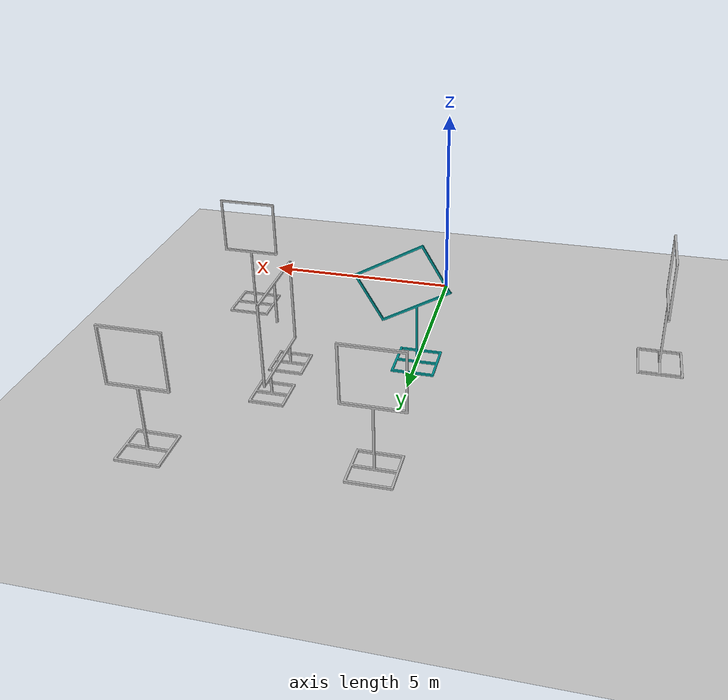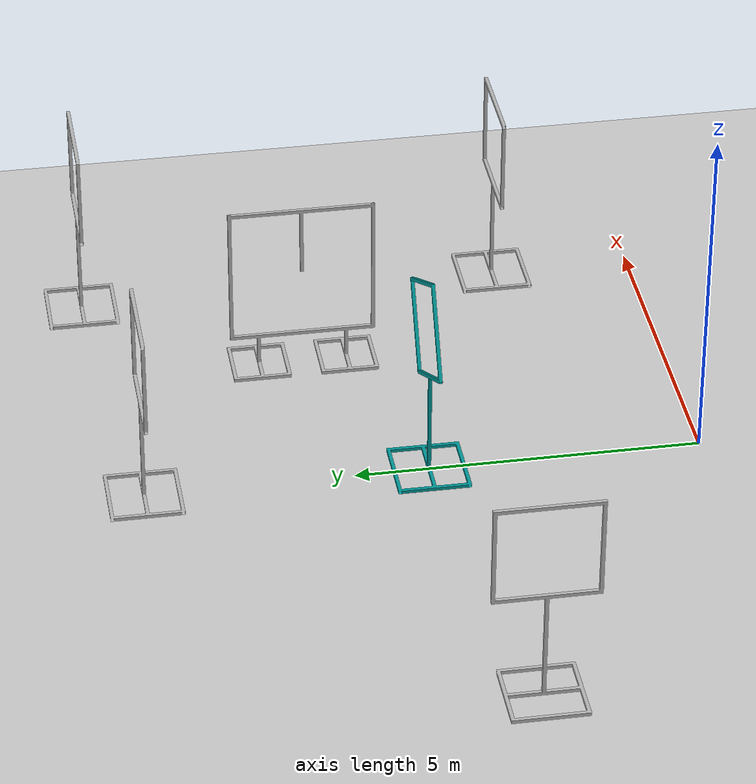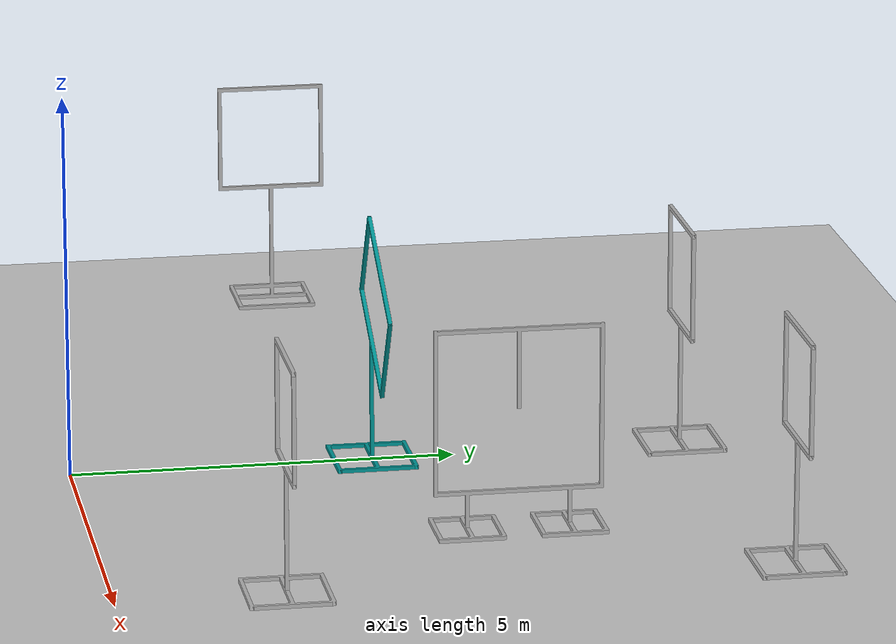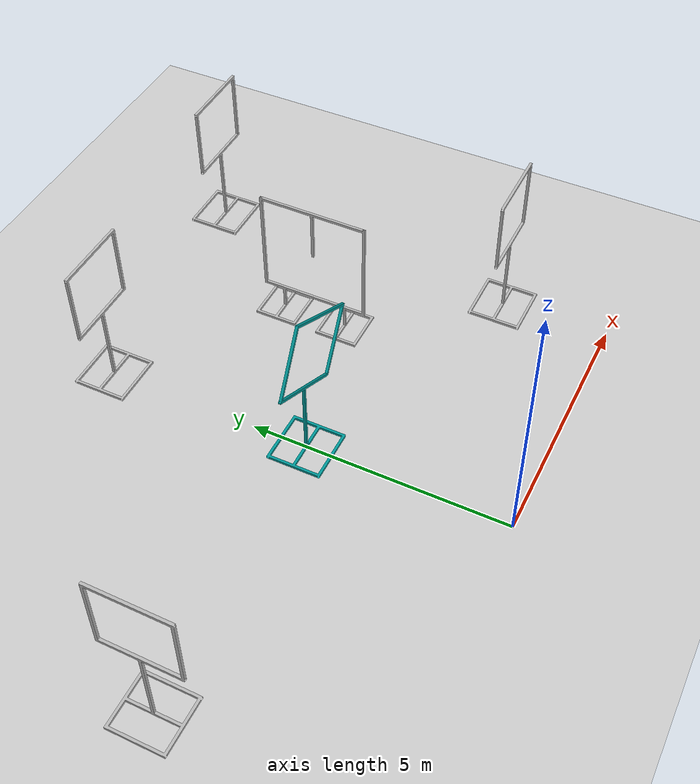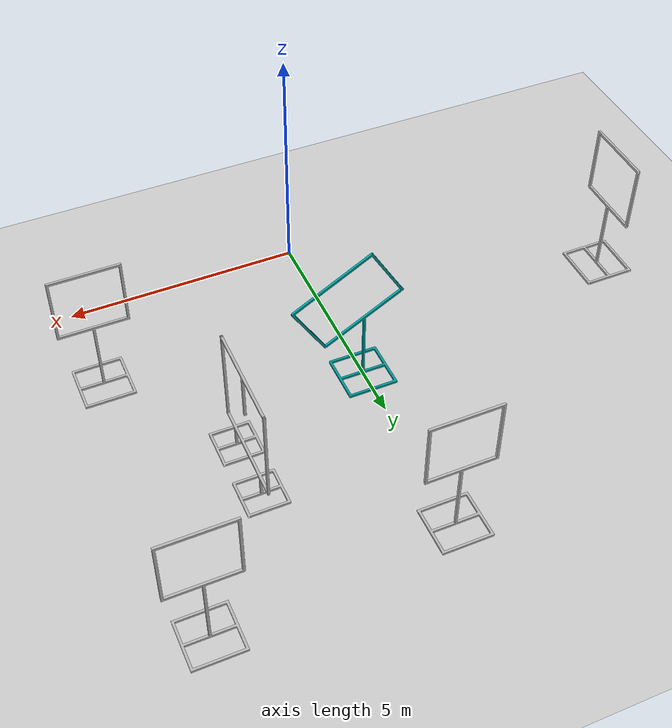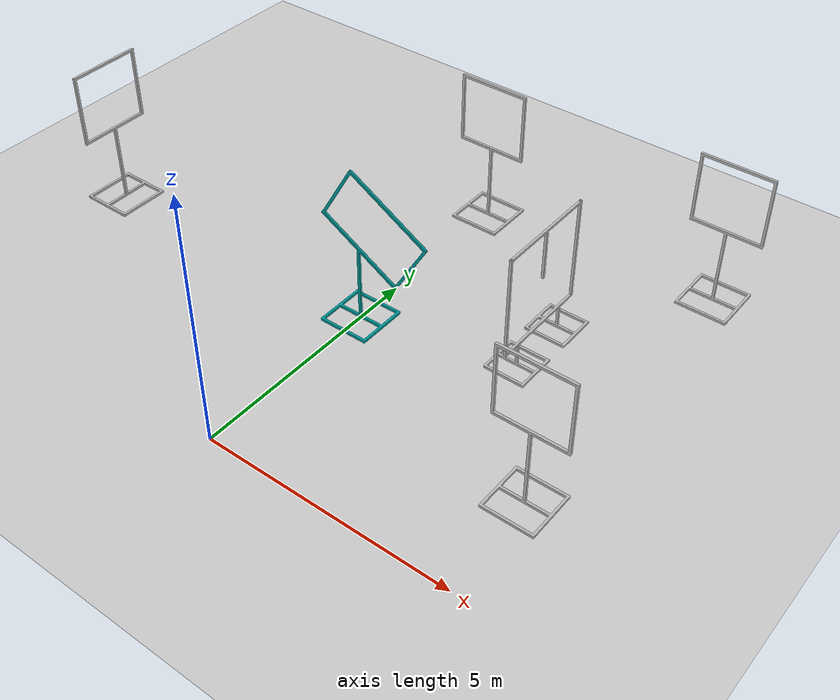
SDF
<sdf version="1.6">
 <world name="default">
  <light name="sun" type="directional">
   <pose>0 0 20 0 -0 0</pose>
   <diffuse>0.9 0.9 0.9 1</diffuse>
   <specular>0.1 0.1 0.1 1</specular>
   <attenuation>
    <range>1000</range>
    <constant>0.9</constant>
    <linear>0.01</linear>
    <quadratic>0.001</quadratic>
   </attenuation>
   <direction>-0.5 0.5 -1</direction>
  </light>
  <model name="ground_plane">
   <static>1</static>
   <link name="link">
    <collision name="collision">
     <geometry><plane><normal>0 0 1</normal><size>100 100</size></plane></geometry>
     <surface><friction><ode><mu>100</mu><mu2>50</mu2></ode></friction></surface>
     <max_contacts>20</max_contacts>
    </collision>
    <visual name="visual">
     <cast_shadows>0</cast_shadows>
     <geometry><plane><normal>0 0 1</normal><size>100 100</size></plane></geometry>
     <material>
      <script><uri>file://media/materials/scripts/gazebo.material</uri><name>Gazebo/Grey</name></script>
     </material>
    </visual>
   </link>
  </model>
  <gravity>0 0 -9.8</gravity>
  <magnetic_field>6e-06 2.3e-05 -4.2e-05</magnetic_field>
  <atmosphere type="adiabatic"/>
  <scene><ambient>0.4 0.4 0.4 1</ambient><background>0.7 0.7 0.7 1</background><shadows>1</shadows></scene>
  <spherical_coordinates>
   <surface_model>EARTH_WGS84</surface_model>
   <latitude_deg>51.9906361</latitude_deg>
   <longitude_deg>4.3767874</longitude_deg>
   <elevation>45.110</elevation>
   <heading_deg>180</heading_deg>
  </spherical_coordinates>
  <plugin name="ros_interface_plugin" filename="librotors_gazebo_ros_interface_plugin.so"/>
  <physics name="default_physics" default="0" type="ode">
   <gravity>0 0 -9.8066</gravity>
   <ode>
    <solver>
     <type>quick</type>
     <iters>10</iters>
     <sor>1.3</sor>
     <use_dynamic_moi_rescaling>0</use_dynamic_moi_rescaling>
    </solver>
    <constraints>
     <cfm>0</cfm>
     <erp>0.2</erp>
     <contact_max_correcting_vel>100</contact_max_correcting_vel>
     <contact_surface_layer>0.001</contact_surface_layer>
    </constraints>
   </ode>
   <max_step_size>0.002</max_step_size>
   <real_time_factor>1</real_time_factor>
   <real_time_update_rate>500</real_time_update_rate>
   <magnetic_field>6e-06 2.3e-05 -4.2e-05</magnetic_field>
  </physics>
  <model name="dronerace_gate_1">
   <static>1</static>
   <pose>-0.00279 3.93081 0 0 -0 0</pose>
   <link name="dronerace_gate_1">
    <visual name="gate">
     <geometry><mesh><uri>model://dronerace_gate_1/normal_gate_1.dae</uri></mesh></geometry>
    </visual>
    <collision name="gate_collision">
     <geometry><mesh><uri>model://dronerace_gate_1/normal_gate_1.dae</uri></mesh></geometry>
    </collision>
   </link>
  </model>
  <model name="gate 2">
   <static>1</static>
   <pose>0 8 0 0 -0 0</pose>
   <link name="dronerace gate 2018">
    <visual name="gate">
     <geometry>
      <mesh><uri>model://dronerace_gate_2018/normal_gate_2018.dae</uri><scale>1 1 1</scale></mesh>
     </geometry>
    </visual>
    <collision name="gate_collision">
     <geometry>
      <mesh><uri>model://dronerace_gate_2018/normal_gate_2018.dae</uri><scale>1 1 1</scale></mesh>
     </geometry>
    </collision>
   </link>
  </model>
  <model name="gate 3">
   <static>1</static>
   <pose>-5.75 3.45 0.5 0 0 1.57</pose>
   <link name="dronerace gate 2018">
    <visual name="gate">
     <geometry>
      <mesh><uri>model://dronerace_gate_2018/normal_gate_2018.dae</uri><scale>1 1 1</scale></mesh>
     </geometry>
    </visual>
    <collision name="gate_collision">
     <geometry>
      <mesh><uri>model://dronerace_gate_2018/normal_gate_2018.dae</uri><scale>1 1 1</scale></mesh>
     </geometry>
    </collision>
   </link>
  </model>
  <model name="gate 4">
   <static>1</static>
   <pose>4.9 8.4 0 0 -0 0</pose>
   <link name="dronerace gate 2018">
    <visual name="gate">
     <geometry>
      <mesh><uri>model://dronerace_gate_2018/normal_gate_2018.dae</uri><scale>1 1 1</scale></mesh>
     </geometry>
    </visual>
    <collision name="gate_collision">
     <geometry>
      <mesh><uri>model://dronerace_gate_2018/normal_gate_2018.dae</uri><scale>1 1 1</scale></mesh>
     </geometry>
    </collision>
   </link>
  </model>
  <model name="gate 5">
   <static>1</static>
   <pose>4.9 2.1 0 0 -0 0</pose>
   <link name="dronerace gate 2018">
    <visual name="gate">
     <geometry>
      <mesh><uri>model://dronerace_gate_2018/normal_gate_2018.dae</uri><scale>1 1 1</scale></mesh>
     </geometry>
    </visual>
    <collision name="gate_collision">
     <geometry>
      <mesh><uri>model://dronerace_gate_2018/normal_gate_2018.dae</uri><scale>1 1 1</scale></mesh>
     </geometry>
    </collision>
   </link>
  </model>
  <model name="gate 7">
   <static>1</static>
   <pose>3.0 5.3 0 0 -0 1.57</pose>
   <link name="dronerace dynamic gate 2018">
    <visual name="gate">
     <geometry>
      <mesh><uri>model://dronerace_dynamicgate_2018/dynamic_gate_2018.dae</uri><scale>1 1 1</scale></mesh>
     </geometry>
    </visual>
    <collision name="gate_collision">
     <geometry>
      <mesh><uri>model://dronerace_dynamicgate_2018/dynamic_gate_2018.dae</uri><scale>1 1 1</scale></mesh>
     </geometry>
    </collision>
   </link>
  </model>
 </world>
</sdf>
